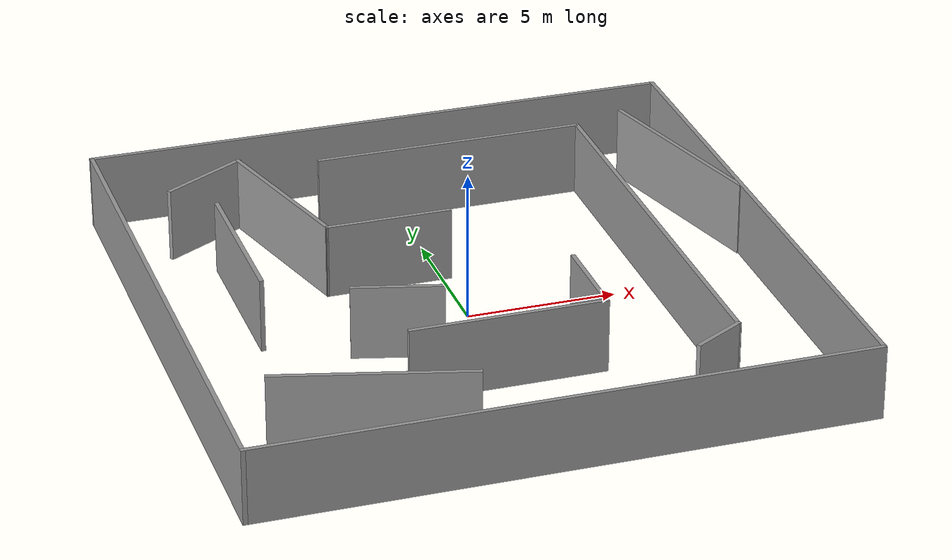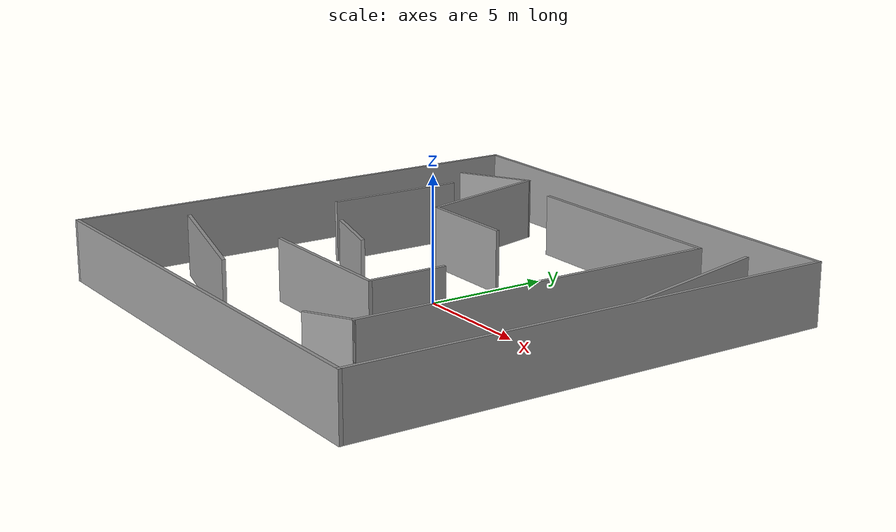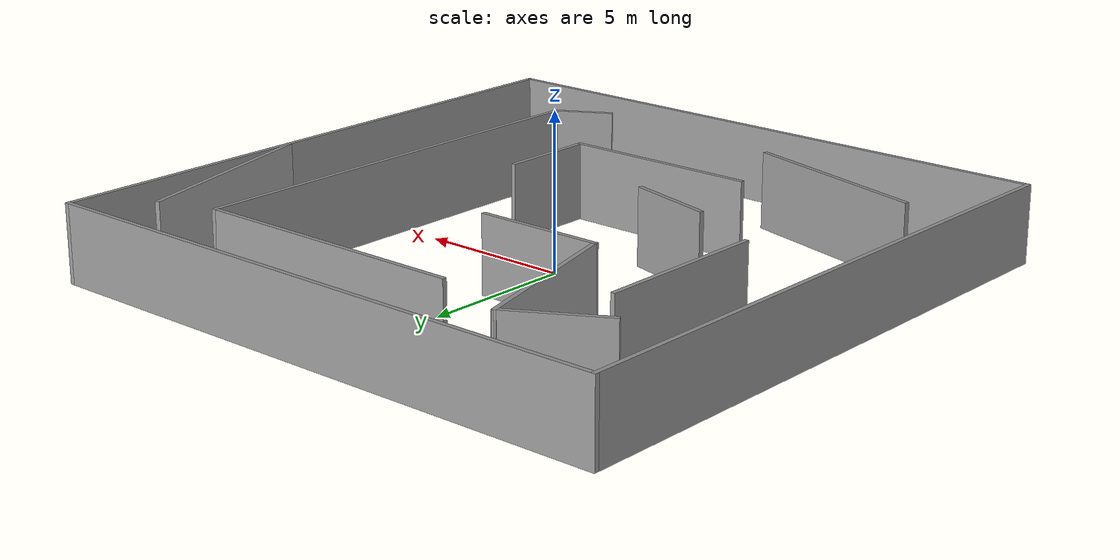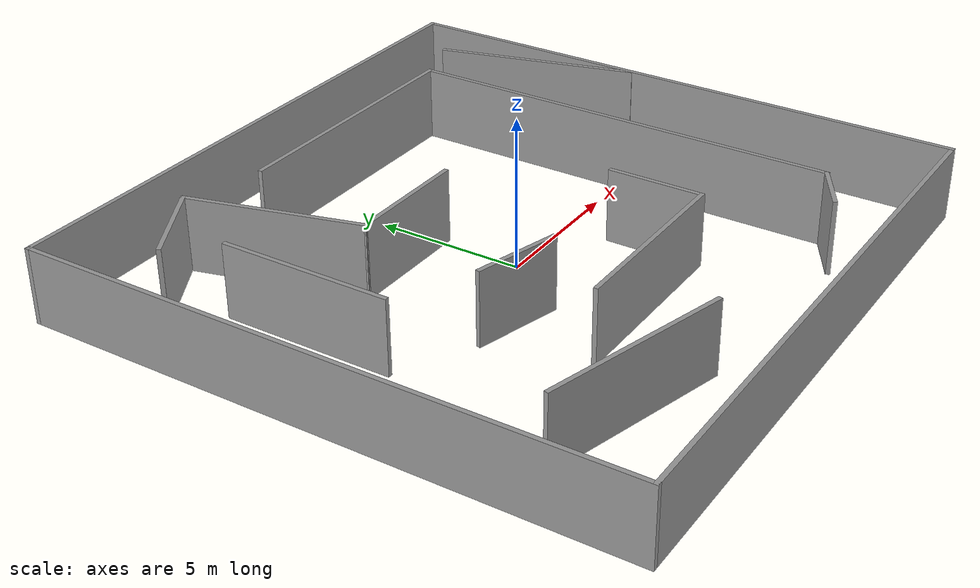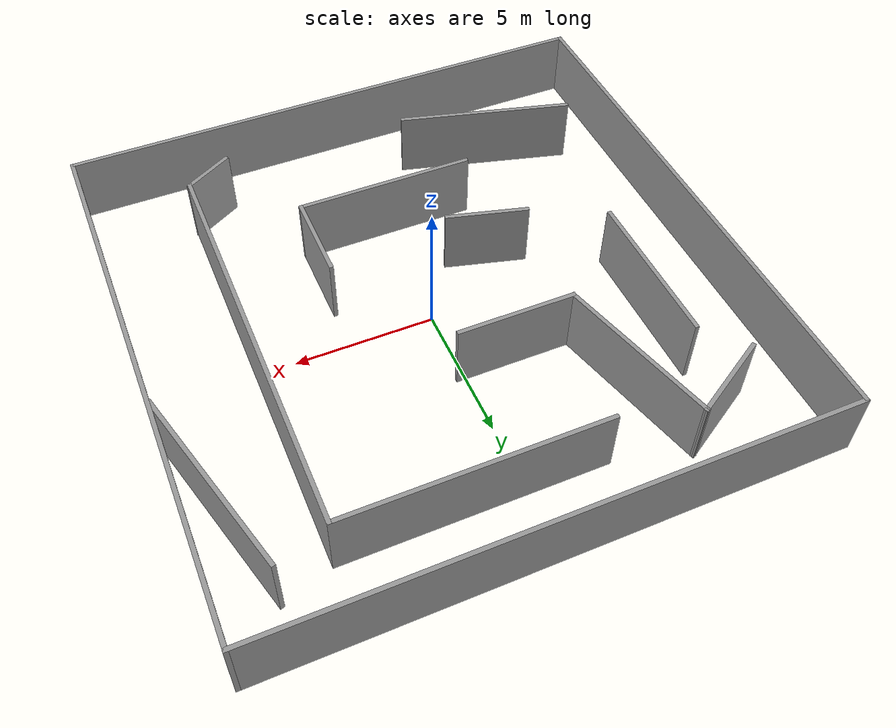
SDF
<?xml version='1.0'?>
<sdf version='1.6'>
  <model name='random'>
    <pose frame=''>0 0 0 0 -0 0</pose>
    <link name='Wall_10'>
      <collision name='Wall_10_Collision'>
        <geometry>
          <box>
            <size>3 0.15 2.5</size>
          </box>
        </geometry>
        <pose frame=''>0 0 1.25 0 -0 0</pose>
      </collision>
      <visual name='Wall_10_Visual'>
        <pose frame=''>0 0 1.25 0 -0 0</pose>
        <geometry>
          <box>
            <size>3 0.15 2.5</size>
          </box>
        </geometry>
        <material>
          <script>
            <uri>file://media/materials/scripts/gazebo.material</uri>
            <name>Gazebo/Grey</name>
          </script>
          <ambient>1 1 1 1</ambient>
        </material>
        <meta>
          <layer>0</layer>
        </meta>
      </visual>
      <pose frame=''>-2.88006 -1.82082 0 0 -0 -0.261799</pose>
    </link>
    <link name='Wall_12'>
      <collision name='Wall_12_Collision'>
        <geometry>
          <box>
            <size>3.25 0.15 2.5</size>
          </box>
        </geometry>
        <pose frame=''>0 0 1.25 0 -0 0</pose>
      </collision>
      <visual name='Wall_12_Visual'>
        <pose frame=''>0 0 1.25 0 -0 0</pose>
        <geometry>
          <box>
            <size>3.25 0.15 2.5</size>
          </box>
        </geometry>
        <material>
          <script>
            <uri>file://media/materials/scripts/gazebo.material</uri>
            <name>Gazebo/Grey</name>
          </script>
          <ambient>1 1 1 1</ambient>
        </material>
        <meta>
          <layer>0</layer>
        </meta>
      </visual>
      <pose frame=''>3.023 -3.1055 0 0 -0 -1.5708</pose>
    </link>
    <link name='Wall_13'>
      <collision name='Wall_13_Collision'>
        <geometry>
          <box>
            <size>6.5 0.15 2.5</size>
          </box>
        </geometry>
        <pose frame=''>0 0 1.25 0 -0 0</pose>
      </collision>
      <visual name='Wall_13_Visual'>
        <pose frame=''>0 0 1.25 0 -0 0</pose>
        <geometry>
          <box>
            <size>6.5 0.15 2.5</size>
          </box>
        </geometry>
        <material>
          <script>
            <uri>file://media/materials/scripts/gazebo.material</uri>
            <name>Gazebo/Grey</name>
          </script>
          <ambient>1 1 1 1</ambient>
        </material>
        <meta>
          <layer>0</layer>
        </meta>
      </visual>
      <pose frame=''>-0.152 -4.6555 0 0 -0 3.14159</pose>
    </link>
    <link name='Wall_15'>
      <collision name='Wall_15_Collision'>
        <geometry>
          <box>
            <size>5.75 0.15 2.5</size>
          </box>
        </geometry>
        <pose frame=''>0 0 1.25 0 -0 0</pose>
      </collision>
      <visual name='Wall_15_Visual'>
        <pose frame=''>0 0 1.25 0 -0 0</pose>
        <geometry>
          <box>
            <size>5.75 0.15 2.5</size>
          </box>
        </geometry>
        <material>
          <script>
            <uri>file://media/materials/scripts/gazebo.material</uri>
            <name>Gazebo/Grey</name>
          </script>
          <ambient>1 1 1 1</ambient>
        </material>
        <meta>
          <layer>0</layer>
        </meta>
      </visual>
      <pose frame=''>-6.8325 2.682 0 0 -0 1.5708</pose>
    </link>
    <link name='Wall_17'>
      <collision name='Wall_17_Collision'>
        <geometry>
          <box>
            <size>9.25 0.15 2.5</size>
          </box>
        </geometry>
        <pose frame=''>0 0 1.25 0 -0 0</pose>
      </collision>
      <visual name='Wall_17_Visual'>
        <pose frame=''>0 0 1.25 0 -0 0</pose>
        <geometry>
          <box>
            <size>9.25 0.15 2.5</size>
          </box>
        </geometry>
        <material>
          <script>
            <uri>file://media/materials/scripts/gazebo.material</uri>
            <name>Gazebo/Grey</name>
          </script>
          <ambient>1 1 1 1</ambient>
        </material>
        <meta>
          <layer>0</layer>
        </meta>
      </visual>
      <pose frame=''>1.7951 7.57362 0 0 -0 0</pose>
    </link>
    <link name='Wall_18'>
      <collision name='Wall_18_Collision'>
        <geometry>
          <box>
            <size>15 0.15 2.5</size>
          </box>
        </geometry>
        <pose frame=''>0 0 1.25 0 -0 0</pose>
      </collision>
      <visual name='Wall_18_Visual'>
        <pose frame=''>0 0 1.25 0 -0 0</pose>
        <geometry>
          <box>
            <size>15 0.15 2.5</size>
          </box>
        </geometry>
        <material>
          <script>
            <uri>file://media/materials/scripts/gazebo.material</uri>
            <name>Gazebo/Grey</name>
          </script>
          <ambient>1 1 1 1</ambient>
        </material>
        <meta>
          <layer>0</layer>
        </meta>
      </visual>
      <pose frame=''>6.3451 0.148619 0 0 -0 -1.5708</pose>
    </link>
    <link name='Wall_19'>
      <collision name='Wall_19_Collision'>
        <geometry>
          <box>
            <size>2 0.15 2.5</size>
          </box>
        </geometry>
        <pose frame=''>0 0 1.25 0 -0 0</pose>
      </collision>
      <visual name='Wall_19_Visual'>
        <pose frame=''>0 0 1.25 0 -0 0</pose>
        <geometry>
          <box>
            <size>2 0.15 2.5</size>
          </box>
        </geometry>
        <material>
          <script>
            <uri>file://media/materials/scripts/gazebo.material</uri>
            <name>Gazebo/Grey</name>
          </script>
          <ambient>1 1 1 1</ambient>
        </material>
        <meta>
          <layer>0</layer>
        </meta>
      </visual>
      <pose frame=''>5.54403 -7.73888 0 0 -0 -2.61799</pose>
    </link>
    <link name='Wall_2'>
      <collision name='Wall_2_Collision'>
        <geometry>
          <box>
            <size>20.15 0.15 2.5</size>
          </box>
        </geometry>
        <pose frame=''>0 0 1.25 0 -0 0</pose>
      </collision>
      <visual name='Wall_2_Visual'>
        <pose frame=''>0 0 1.25 0 -0 0</pose>
        <geometry>
          <box>
            <size>20.15 0.15 2.5</size>
          </box>
        </geometry>
        <material>
          <script>
            <uri>file://media/materials/scripts/gazebo.material</uri>
            <name>Gazebo/Grey</name>
          </script>
          <ambient>1 1 1 1</ambient>
        </material>
        <meta>
          <layer>0</layer>
        </meta>
      </visual>
      <pose frame=''>10 0 0 0 -0 -1.5708</pose>
    </link>
    <link name='Wall_21'>
      <collision name='Wall_21_Collision'>
        <geometry>
          <box>
            <size>4.25 0.15 2.5</size>
          </box>
        </geometry>
        <pose frame=''>0 0 1.25 0 -0 0</pose>
      </collision>
      <visual name='Wall_21_Visual'>
        <pose frame=''>0 0 1.25 0 -0 0</pose>
        <geometry>
          <box>
            <size>4.25 0.15 2.5</size>
          </box>
        </geometry>
        <material>
          <script>
            <uri>file://media/materials/scripts/gazebo.material</uri>
            <name>Gazebo/Grey</name>
          </script>
          <ambient>1 1 1 1</ambient>
        </material>
        <meta>
          <layer>0</layer>
        </meta>
      </visual>
      <pose frame=''>-1.81119 2.75941 0 0 -0 3.14159</pose>
    </link>
    <link name='Wall_22'>
      <collision name='Wall_22_Collision'>
        <geometry>
          <box>
            <size>6 0.15 2.5</size>
          </box>
        </geometry>
        <pose frame=''>0 0 1.25 0 -0 0</pose>
      </collision>
      <visual name='Wall_22_Visual'>
        <pose frame=''>0 0 1.25 0 -0 0</pose>
        <geometry>
          <box>
            <size>6 0.15 2.5</size>
          </box>
        </geometry>
        <material>
          <script>
            <uri>file://media/materials/scripts/gazebo.material</uri>
            <name>Gazebo/Grey</name>
          </script>
          <ambient>1 1 1 1</ambient>
        </material>
        <meta>
          <layer>0</layer>
        </meta>
      </visual>
      <pose frame=''>-4.61823 5.58474 0 0 -0 1.8326</pose>
    </link>
    <link name='Wall_23'>
      <collision name='Wall_23_Collision'>
        <geometry>
          <box>
            <size>3.25 0.15 2.5</size>
          </box>
        </geometry>
        <pose frame=''>0 0 1.25 0 -0 0</pose>
      </collision>
      <visual name='Wall_23_Visual'>
        <pose frame=''>0 0 1.25 0 -0 0</pose>
        <geometry>
          <box>
            <size>3.25 0.15 2.5</size>
          </box>
        </geometry>
        <material>
          <script>
            <uri>file://media/materials/scripts/gazebo.material</uri>
            <name>Gazebo/Grey</name>
          </script>
          <ambient>1 1 1 1</ambient>
        </material>
        <meta>
          <layer>0</layer>
        </meta>
      </visual>
      <pose frame=''>-6.71762 7.63507 0 0 -0 -2.61799</pose>
    </link>
    <link name='Wall_25'>
      <collision name='Wall_25_Collision'>
        <geometry>
          <box>
            <size>6.5 0.15 2.5</size>
          </box>
        </geometry>
        <pose frame=''>0 0 1.25 0 -0 0</pose>
      </collision>
      <visual name='Wall_25_Visual'>
        <pose frame=''>0 0 1.25 0 -0 0</pose>
        <geometry>
          <box>
            <size>6.5 0.15 2.5</size>
          </box>
        </geometry>
        <material>
          <script>
            <uri>file://media/materials/scripts/gazebo.material</uri>
            <name>Gazebo/Grey</name>
          </script>
          <ambient>1 1 1 1</ambient>
        </material>
        <meta>
          <layer>0</layer>
        </meta>
      </visual>
      <pose frame=''>-5.14959 -6.88166 0 0 -0 -0.261799</pose>
    </link>
    <link name='Wall_27'>
      <collision name='Wall_27_Collision'>
        <geometry>
          <box>
            <size>7 0.15 2.5</size>
          </box>
        </geometry>
        <pose frame=''>0 0 1.25 0 -0 0</pose>
      </collision>
      <visual name='Wall_27_Visual'>
        <pose frame=''>0 0 1.25 0 -0 0</pose>
        <geometry>
          <box>
            <size>7 0.15 2.5</size>
          </box>
        </geometry>
        <material>
          <script>
            <uri>file://media/materials/scripts/gazebo.material</uri>
            <name>Gazebo/Grey</name>
          </script>
          <ambient>1 1 1 1</ambient>
        </material>
        <meta>
          <layer>0</layer>
        </meta>
      </visual>
      <pose frame=''>9.05456 4.87216 0 0 -0 -1.309</pose>
    </link>
    <link name='Wall_4'>
      <collision name='Wall_4_Collision'>
        <geometry>
          <box>
            <size>20.15 0.15 2.5</size>
          </box>
        </geometry>
        <pose frame=''>0 0 1.25 0 -0 0</pose>
      </collision>
      <visual name='Wall_4_Visual'>
        <pose frame=''>0 0 1.25 0 -0 0</pose>
        <geometry>
          <box>
            <size>20.15 0.15 2.5</size>
          </box>
        </geometry>
        <material>
          <script>
            <uri>file://media/materials/scripts/gazebo.material</uri>
            <name>Gazebo/Grey</name>
          </script>
          <ambient>1 1 1 1</ambient>
        </material>
        <meta>
          <layer>0</layer>
        </meta>
      </visual>
      <pose frame=''>0 10 0 0 -0 3.14159</pose>
    </link>
    <link name='Wall_6'>
      <collision name='Wall_6_Collision'>
        <geometry>
          <box>
            <size>20.15 0.15 2.5</size>
          </box>
        </geometry>
        <pose frame=''>0 0 1.25 0 -0 0</pose>
      </collision>
      <visual name='Wall_6_Visual'>
        <pose frame=''>0 0 1.25 0 -0 0</pose>
        <geometry>
          <box>
            <size>20.15 0.15 2.5</size>
          </box>
        </geometry>
        <material>
          <script>
            <uri>file://media/materials/scripts/gazebo.material</uri>
            <name>Gazebo/Grey</name>
          </script>
          <ambient>1 1 1 1</ambient>
        </material>
        <meta>
          <layer>0</layer>
        </meta>
      </visual>
      <pose frame=''>0 -10 0 0 -0 3.14159</pose>
    </link>
    <link name='Wall_8'>
      <collision name='Wall_8_Collision'>
        <geometry>
          <box>
            <size>20.15 0.15 2.5</size>
          </box>
        </geometry>
        <pose frame=''>0 0 1.25 0 -0 0</pose>
      </collision>
      <visual name='Wall_8_Visual'>
        <pose frame=''>0 0 1.25 0 -0 0</pose>
        <geometry>
          <box>
            <size>20.15 0.15 2.5</size>
          </box>
        </geometry>
        <material>
          <script>
            <uri>file://media/materials/scripts/gazebo.material</uri>
            <name>Gazebo/Grey</name>
          </script>
          <ambient>1 1 1 1</ambient>
        </material>
        <meta>
          <layer>0</layer>
        </meta>
      </visual>
      <pose frame=''>-10 0 0 0 -0 -1.5708</pose>
    </link>
    <static>1</static>
  </model>
</sdf>
